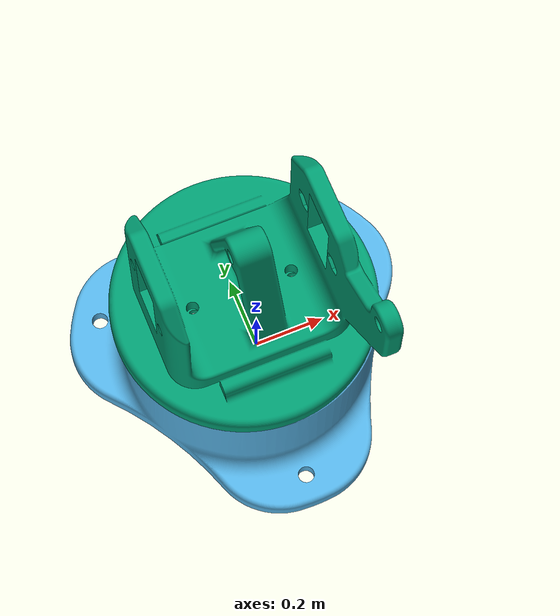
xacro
<?xml version="1.0"?>
<robot xmlns:xacro="http://www.ros.org/wiki/xacro" name="arduinobot">

    <!-- Useful Variables (Properties) -->
    <xacro:property name="PI" value="3.14159265359" />
    <xacro:property name="effort" value="30" />
    <xacro:property name="velocity" value="10" />

    <!-- Links -->
    <link name="world"/>

    <link name="base_link">
        <visual>
            <origin rpy="0 0 0" xyz="-0.5 -0.5 0"/>
            <geometry>
                <mesh filename="package://arduinobot_description/mesh/basement.STL" scale="0.01 0.01 0.01"/>
            </geometry>
        </visual>
    </link>

    <link name="base_plate">
        <visual>
            <origin rpy="0 0 0" xyz="-0.39 -0.39 -0.56"/>
            <geometry>
                <mesh filename="package://arduinobot_description/mesh/base_plate.STL" scale="0.01 0.01 0.01"/>
            </geometry>
        </visual>
    </link>

    <!-- Joints -->
    <joint name="virtual_joint" type="fixed">
        <parent link="world"/>
        <child link="base_link"/>
        <origin xyz="0 0 0" rpy="0 0 0"/>
    </joint>

    <joint name ="joint_1" type="revolute">
        <parent link="base_link"/>
        <child link = "base_plate"/>
        <origin xyz="0 0 0.307"/>
        <axis xyz="0 0 1"/>
        <limit lower="-${PI/2}" upper="${PI/2}" effort="${effort}" velocity="${velocity}"/>
    </joint>

</robot>
